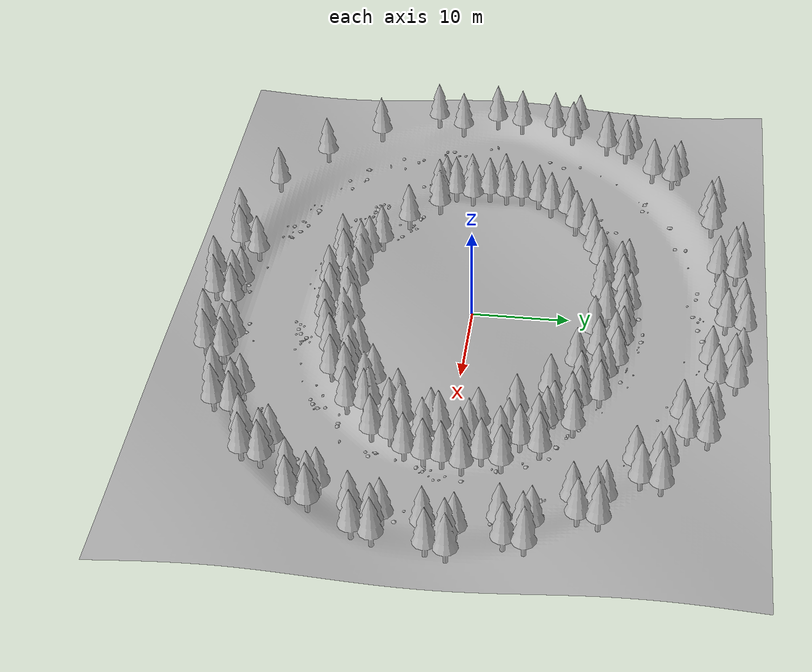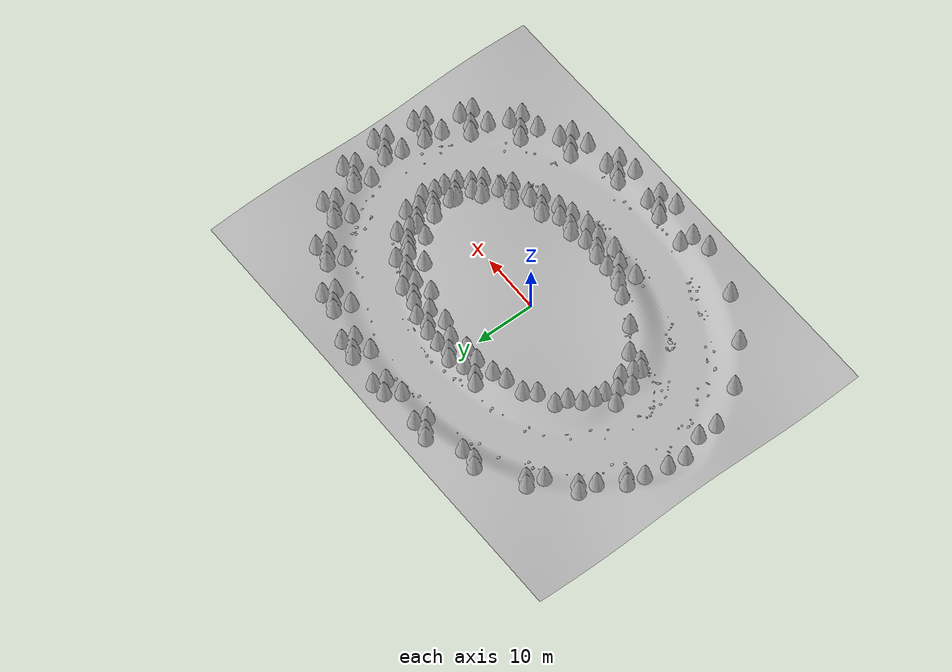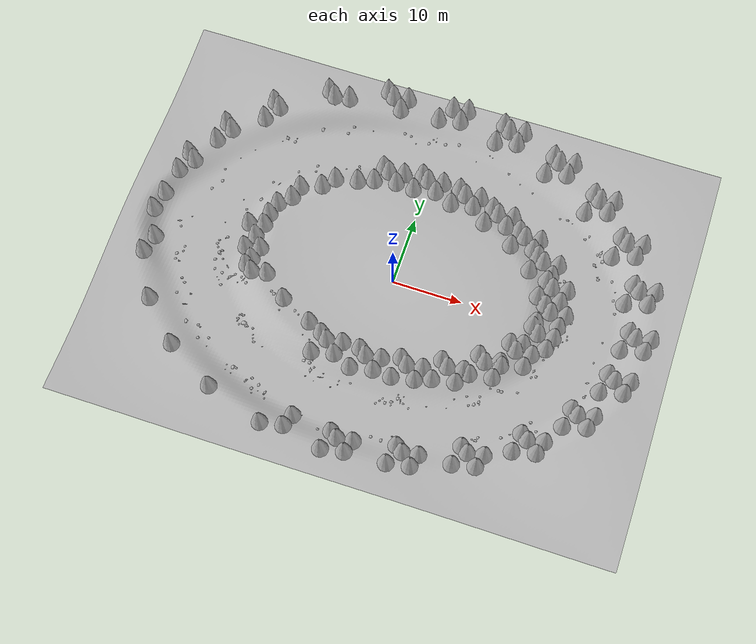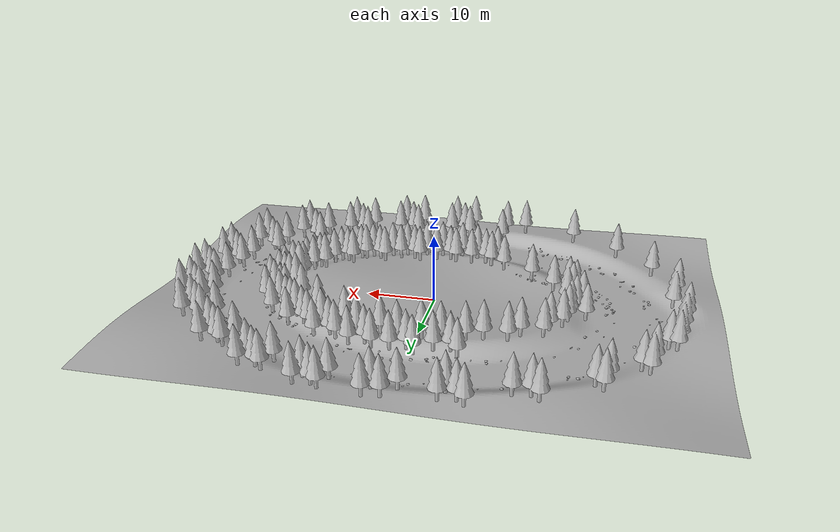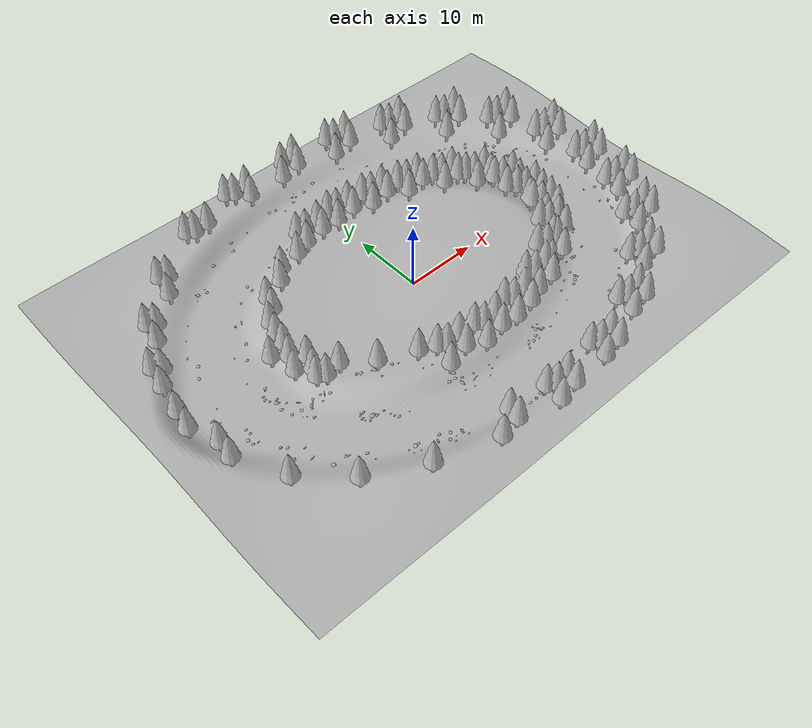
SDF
<sdf version="1.9">
 <world name="nomad_forest">
  <model name="terrain">
   <static>true</static>
   <link name="link">
    <visual name="visual">
     <geometry><mesh><uri>../assets/geometry/terrain.obj</uri><scale>1 1 1</scale></mesh></geometry>
    </visual>
    <collision name="rock">
     <geometry><mesh><uri>../assets/geometry/terrain.obj</uri><scale>1 1 1</scale></mesh></geometry>
    </collision>
   </link>
  </model>
  <model name="tree_001">
   <static>true</static>
   <pose>22.2 1.4 0.48610971503627975 0 0 0.0</pose>
   <link name="link">
    <visual name="visual">
     <geometry><mesh><uri>../assets/models/pine_tree.obj</uri><scale>1.3 1.3 1.3</scale></mesh></geometry>
    </visual>
    <collision name="trunk">
     <pose>0 0 2.08 0 0 0</pose>
     <geometry><cylinder><radius>0.26</radius><length>4.16</length></cylinder></geometry>
    </collision>
   </link>
  </model>
  <model name="tree_002">
   <static>true</static>
   <pose>23.8 -0.2 0.07159315940858453 0 0 0.0</pose>
   <link name="link">
    <visual name="visual">
     <geometry><mesh><uri>../assets/models/pine_tree.obj</uri><scale>1.3 1.3 1.3</scale></mesh></geometry>
    </visual>
    <collision name="trunk">
     <pose>0 0 2.08 0 0 0</pose>
     <geometry><cylinder><radius>0.26</radius><length>4.16</length></cylinder></geometry>
    </collision>
   </link>
  </model>
  <model name="tree_004">
   <static>true</static>
   <pose>24.4 1.7 0.0016630969536097122 0 0 0.0</pose>
   <link name="link">
    <visual name="visual">
     <geometry><mesh><uri>../assets/models/pine_tree.obj</uri><scale>1.3 1.3 1.3</scale></mesh></geometry>
    </visual>
    <collision name="trunk">
     <pose>0 0 2.08 0 0 0</pose>
     <geometry><cylinder><radius>0.26</radius><length>4.16</length></cylinder></geometry>
    </collision>
   </link>
  </model>
  <model name="tree_005">
   <static>true</static>
   <pose>32.7 -0.8 0.10340666617253662 0 0 0.0</pose>
   <link name="link">
    <visual name="visual">
     <geometry><mesh><uri>../assets/models/pine_tree.obj</uri><scale>1.3 1.3 1.3</scale></mesh></geometry>
    </visual>
    <collision name="trunk">
     <pose>0 0 2.08 0 0 0</pose>
     <geometry><cylinder><radius>0.26</radius><length>4.16</length></cylinder></geometry>
    </collision>
   </link>
  </model>
  <model name="tree_008">
   <static>true</static>
   <pose>33.2 2.1 0.1996735581411467 0 0 0.0</pose>
   <link name="link">
    <visual name="visual">
     <geometry><mesh><uri>../assets/models/pine_tree.obj</uri><scale>1.3 1.3 1.3</scale></mesh></geometry>
    </visual>
    <collision name="trunk">
     <pose>0 0 2.08 0 0 0</pose>
     <geometry><cylinder><radius>0.26</radius><length>4.16</length></cylinder></geometry>
    </collision>
   </link>
  </model>
  <model name="tree_011">
   <static>true</static>
   <pose>21.4503681783595 5.023466631435291 0.38451372104287335 0 0 0.2617993877991494</pose>
   <link name="link">
    <visual name="visual">
     <geometry><mesh><uri>../assets/models/pine_tree.obj</uri><scale>1.3 1.3 1.3</scale></mesh></geometry>
    </visual>
    <collision name="trunk">
     <pose>0 0 2.08 0 0 0</pose>
     <geometry><cylinder><radius>0.26</radius><length>4.16</length></cylinder></geometry>
    </collision>
   </link>
  </model>
  <model name="tree_012">
   <static>true</static>
   <pose>23.050368178359502 3.42346663143529 0.12085753786965957 0 0 0.2617993877991494</pose>
   <link name="link">
    <visual name="visual">
     <geometry><mesh><uri>../assets/models/pine_tree.obj</uri><scale>1.3 1.3 1.3</scale></mesh></geometry>
    </visual>
    <collision name="trunk">
     <pose>0 0 2.08 0 0 0</pose>
     <geometry><cylinder><radius>0.26</radius><length>4.16</length></cylinder></geometry>
    </collision>
   </link>
  </model>
  <model name="tree_013">
   <static>true</static>
   <pose>20.4503681783595 5.72346663143529 0.5880347906159413 0 0 0.2617993877991494</pose>
   <link name="link">
    <visual name="visual">
     <geometry><mesh><uri>../assets/models/pine_tree.obj</uri><scale>1.3 1.3 1.3</scale></mesh></geometry>
    </visual>
    <collision name="trunk">
     <pose>0 0 2.08 0 0 0</pose>
     <geometry><cylinder><radius>0.26</radius><length>4.16</length></cylinder></geometry>
    </collision>
   </link>
  </model>
  <model name="tree_014">
   <static>true</static>
   <pose>23.6503681783595 5.3234666314352905 0.0 0 0 0.2617993877991494</pose>
   <link name="link">
    <visual name="visual">
     <geometry><mesh><uri>../assets/models/pine_tree.obj</uri><scale>1.3 1.3 1.3</scale></mesh></geometry>
    </visual>
    <collision name="trunk">
     <pose>0 0 2.08 0 0 0</pose>
     <geometry><cylinder><radius>0.26</radius><length>4.16</length></cylinder></geometry>
    </collision>
   </link>
  </model>
  <model name="tree_015">
   <static>true</static>
   <pose>31.54147809382832 5.929295172665539 0.11574541042770978 0 0 0.2617993877991494</pose>
   <link name="link">
    <visual name="visual">
     <geometry><mesh><uri>../assets/models/pine_tree.obj</uri><scale>1.3 1.3 1.3</scale></mesh></geometry>
    </visual>
    <collision name="trunk">
     <pose>0 0 2.08 0 0 0</pose>
     <geometry><cylinder><radius>0.26</radius><length>4.16</length></cylinder></geometry>
    </collision>
   </link>
  </model>
  <model name="tree_021">
   <static>true</static>
   <pose>19.252558883257652 8.399999999999999 0.3602471448523519 0 0 0.5235987755982988</pose>
   <link name="link">
    <visual name="visual">
     <geometry><mesh><uri>../assets/models/pine_tree.obj</uri><scale>1.3 1.3 1.3</scale></mesh></geometry>
    </visual>
    <collision name="trunk">
     <pose>0 0 2.08 0 0 0</pose>
     <geometry><cylinder><radius>0.26</radius><length>4.16</length></cylinder></geometry>
    </collision>
   </link>
  </model>
  <model name="tree_022">
   <static>true</static>
   <pose>20.852558883257654 6.799999999999999 0.2710729561804973 0 0 0.5235987755982988</pose>
   <link name="link">
    <visual name="visual">
     <geometry><mesh><uri>../assets/models/pine_tree.obj</uri><scale>1.3 1.3 1.3</scale></mesh></geometry>
    </visual>
    <collision name="trunk">
     <pose>0 0 2.08 0 0 0</pose>
     <geometry><cylinder><radius>0.26</radius><length>4.16</length></cylinder></geometry>
    </collision>
   </link>
  </model>
  <model name="tree_023">
   <static>true</static>
   <pose>18.252558883257652 9.1 0.4354302617749764 0 0 0.5235987755982988</pose>
   <link name="link">
    <visual name="visual">
     <geometry><mesh><uri>../assets/models/pine_tree.obj</uri><scale>1.3 1.3 1.3</scale></mesh></geometry>
    </visual>
    <collision name="trunk">
     <pose>0 0 2.08 0 0 0</pose>
     <geometry><cylinder><radius>0.26</radius><length>4.16</length></cylinder></geometry>
    </collision>
   </link>
  </model>
  <model name="tree_024">
   <static>true</static>
   <pose>21.45255888325765 8.7 0.0 0 0 0.5235987755982988</pose>
   <link name="link">
    <visual name="visual">
     <geometry><mesh><uri>../assets/models/pine_tree.obj</uri><scale>1.3 1.3 1.3</scale></mesh></geometry>
    </visual>
    <collision name="trunk">
     <pose>0 0 2.08 0 0 0</pose>
     <geometry><cylinder><radius>0.26</radius><length>4.16</length></cylinder></geometry>
    </collision>
   </link>
  </model>
  <model name="tree_025">
   <static>true</static>
   <pose>28.144863728670916 12.199999999999998 0.22459463047103365 0 0 0.5235987755982988</pose>
   <link name="link">
    <visual name="visual">
     <geometry><mesh><uri>../assets/models/pine_tree.obj</uri><scale>1.3 1.3 1.3</scale></mesh></geometry>
    </visual>
    <collision name="trunk">
     <pose>0 0 2.08 0 0 0</pose>
     <geometry><cylinder><radius>0.26</radius><length>4.16</length></cylinder></geometry>
    </collision>
   </link>
  </model>
  <model name="tree_031">
   <static>true</static>
   <pose>15.756349186104046 11.299494936611664 0.35532801148949694 0 0 0.7853981633974483</pose>
   <link name="link">
    <visual name="visual">
     <geometry><mesh><uri>../assets/models/pine_tree.obj</uri><scale>1.3 1.3 1.3</scale></mesh></geometry>
    </visual>
    <collision name="trunk">
     <pose>0 0 2.08 0 0 0</pose>
     <geometry><cylinder><radius>0.26</radius><length>4.16</length></cylinder></geometry>
    </collision>
   </link>
  </model>
  <model name="tree_032">
   <static>true</static>
   <pose>17.356349186104048 9.699494936611664 0.48352514104800615 0 0 0.7853981633974483</pose>
   <link name="link">
    <visual name="visual">
     <geometry><mesh><uri>../assets/models/pine_tree.obj</uri><scale>1.3 1.3 1.3</scale></mesh></geometry>
    </visual>
    <collision name="trunk">
     <pose>0 0 2.08 0 0 0</pose>
     <geometry><cylinder><radius>0.26</radius><length>4.16</length></cylinder></geometry>
    </collision>
   </link>
  </model>
  <model name="tree_033">
   <static>true</static>
   <pose>14.756349186104046 11.999494936611663 0.32599767005080293 0 0 0.7853981633974483</pose>
   <link name="link">
    <visual name="visual">
     <geometry><mesh><uri>../assets/models/pine_tree.obj</uri><scale>1.3 1.3 1.3</scale></mesh></geometry>
    </visual>
    <collision name="trunk">
     <pose>0 0 2.08 0 0 0</pose>
     <geometry><cylinder><radius>0.26</radius><length>4.16</length></cylinder></geometry>
    </collision>
   </link>
  </model>
  <model name="tree_034">
   <static>true</static>
   <pose>17.956349186104045 11.599494936611663 0.01610409944721286 0 0 0.7853981633974483</pose>
   <link name="link">
    <visual name="visual">
     <geometry><mesh><uri>../assets/models/pine_tree.obj</uri><scale>1.3 1.3 1.3</scale></mesh></geometry>
    </visual>
    <collision name="trunk">
     <pose>0 0 2.08 0 0 0</pose>
     <geometry><cylinder><radius>0.26</radius><length>4.16</length></cylinder></geometry>
    </collision>
   </link>
  </model>
  <model name="tree_035">
   <static>true</static>
   <pose>22.741630560342617 17.584776310850234 0.31578794078068306 0 0 0.7853981633974483</pose>
   <link name="link">
    <visual name="visual">
     <geometry><mesh><uri>../assets/models/pine_tree.obj</uri><scale>1.3 1.3 1.3</scale></mesh></geometry>
    </visual>
    <collision name="trunk">
     <pose>0 0 2.08 0 0 0</pose>
     <geometry><cylinder><radius>0.26</radius><length>4.16</length></cylinder></geometry>
    </collision>
   </link>
  </model>
  <model name="tree_041">
   <static>true</static>
   <pose>11.200000000000001 13.524355652982141 0.3609772500529969 0 0 1.0471975511965976</pose>
   <link name="link">
    <visual name="visual">
     <geometry><mesh><uri>../assets/models/pine_tree.obj</uri><scale>1.3 1.3 1.3</scale></mesh></geometry>
    </visual>
    <collision name="trunk">
     <pose>0 0 2.08 0 0 0</pose>
     <geometry><cylinder><radius>0.26</radius><length>4.16</length></cylinder></geometry>
    </collision>
   </link>
  </model>
  <model name="tree_042">
   <static>true</static>
   <pose>12.800000000000002 11.924355652982142 0.6368033489550051 0 0 1.0471975511965976</pose>
   <link name="link">
    <visual name="visual">
     <geometry><mesh><uri>../assets/models/pine_tree.obj</uri><scale>1.3 1.3 1.3</scale></mesh></geometry>
    </visual>
    <collision name="trunk">
     <pose>0 0 2.08 0 0 0</pose>
     <geometry><cylinder><radius>0.26</radius><length>4.16</length></cylinder></geometry>
    </collision>
   </link>
  </model>
  <model name="tree_043">
   <static>true</static>
   <pose>10.200000000000001 14.22435565298214 0.271439670314414 0 0 1.0471975511965976</pose>
   <link name="link">
    <visual name="visual">
     <geometry><mesh><uri>../assets/models/pine_tree.obj</uri><scale>1.3 1.3 1.3</scale></mesh></geometry>
    </visual>
    <collision name="trunk">
     <pose>0 0 2.08 0 0 0</pose>
     <geometry><cylinder><radius>0.26</radius><length>4.16</length></cylinder></geometry>
    </collision>
   </link>
  </model>
  <model name="tree_044">
   <static>true</static>
   <pose>13.400000000000002 13.82435565298214 0.07714651540756952 0 0 1.0471975511965976</pose>
   <link name="link">
    <visual name="visual">
     <geometry><mesh><uri>../assets/models/pine_tree.obj</uri><scale>1.3 1.3 1.3</scale></mesh></geometry>
    </visual>
    <collision name="trunk">
     <pose>0 0 2.08 0 0 0</pose>
     <geometry><cylinder><radius>0.26</radius><length>4.16</length></cylinder></geometry>
    </collision>
   </link>
  </model>
  <model name="tree_045">
   <static>true</static>
   <pose>15.700000000000003 21.716660498395402 0.3554778454459296 0 0 1.0471975511965976</pose>
   <link name="link">
    <visual name="visual">
     <geometry><mesh><uri>../assets/models/pine_tree.obj</uri><scale>1.3 1.3 1.3</scale></mesh></geometry>
    </visual>
    <collision name="trunk">
     <pose>0 0 2.08 0 0 0</pose>
     <geometry><cylinder><radius>0.26</radius><length>4.16</length></cylinder></geometry>
    </collision>
   </link>
  </model>
  <model name="tree_051">
   <static>true</static>
   <pose>5.894018992255462 14.922961568046956 0.446261835789277 0 0 1.308996938995747</pose>
   <link name="link">
    <visual name="visual">
     <geometry><mesh><uri>../assets/models/pine_tree.obj</uri><scale>1.3 1.3 1.3</scale></mesh></geometry>
    </visual>
    <collision name="trunk">
     <pose>0 0 2.08 0 0 0</pose>
     <geometry><cylinder><radius>0.26</radius><length>4.16</length></cylinder></geometry>
    </collision>
   </link>
  </model>
  <model name="tree_052">
   <static>true</static>
   <pose>7.494018992255461 13.322961568046956 0.7757029701277439 0 0 1.308996938995747</pose>
   <link name="link">
    <visual name="visual">
     <geometry><mesh><uri>../assets/models/pine_tree.obj</uri><scale>1.3 1.3 1.3</scale></mesh></geometry>
    </visual>
    <collision name="trunk">
     <pose>0 0 2.08 0 0 0</pose>
     <geometry><cylinder><radius>0.26</radius><length>4.16</length></cylinder></geometry>
    </collision>
   </link>
  </model>
  <model name="tree_053">
   <static>true</static>
   <pose>4.894018992255462 15.622961568046955 0.2975410747441759 0 0 1.308996938995747</pose>
   <link name="link">
    <visual name="visual">
     <geometry><mesh><uri>../assets/models/pine_tree.obj</uri><scale>1.3 1.3 1.3</scale></mesh></geometry>
    </visual>
    <collision name="trunk">
     <pose>0 0 2.08 0 0 0</pose>
     <geometry><cylinder><radius>0.26</radius><length>4.16</length></cylinder></geometry>
    </collision>
   </link>
  </model>
  <model name="tree_054">
   <static>true</static>
   <pose>8.094018992255462 15.222961568046955 0.19047295386907673 0 0 1.308996938995747</pose>
   <link name="link">
    <visual name="visual">
     <geometry><mesh><uri>../assets/models/pine_tree.obj</uri><scale>1.3 1.3 1.3</scale></mesh></geometry>
    </visual>
    <collision name="trunk">
     <pose>0 0 2.08 0 0 0</pose>
     <geometry><cylinder><radius>0.26</radius><length>4.16</length></cylinder></geometry>
    </collision>
   </link>
  </model>
  <model name="tree_055">
   <static>true</static>
   <pose>7.499847533485712 24.31407148351577 0.5821905365296843 0 0 1.308996938995747</pose>
   <link name="link">
    <visual name="visual">
     <geometry><mesh><uri>../assets/models/pine_tree.obj</uri><scale>1.3 1.3 1.3</scale></mesh></geometry>
    </visual>
    <collision name="trunk">
     <pose>0 0 2.08 0 0 0</pose>
     <geometry><cylinder><radius>0.26</radius><length>4.16</length></cylinder></geometry>
    </collision>
   </link>
  </model>
  <model name="tree_061">
   <static>true</static>
   <pose>0.20000000000000137 15.4 0.6259282533875952 0 0 1.5707963267948966</pose>
   <link name="link">
    <visual name="visual">
     <geometry><mesh><uri>../assets/models/pine_tree.obj</uri><scale>1.3 1.3 1.3</scale></mesh></geometry>
    </visual>
    <collision name="trunk">
     <pose>0 0 2.08 0 0 0</pose>
     <geometry><cylinder><radius>0.26</radius><length>4.16</length></cylinder></geometry>
    </collision>
   </link>
  </model>
  <model name="tree_063">
   <static>true</static>
   <pose>-0.7999999999999987 16.1 0.3581369147440168 0 0 1.5707963267948966</pose>
   <link name="link">
    <visual name="visual">
     <geometry><mesh><uri>../assets/models/pine_tree.obj</uri><scale>1.3 1.3 1.3</scale></mesh></geometry>
    </visual>
    <collision name="trunk">
     <pose>0 0 2.08 0 0 0</pose>
     <geometry><cylinder><radius>0.26</radius><length>4.16</length></cylinder></geometry>
    </collision>
   </link>
  </model>
  <model name="tree_064">
   <static>true</static>
   <pose>2.4000000000000012 15.7 0.4158137723847154 0 0 1.5707963267948966</pose>
   <link name="link">
    <visual name="visual">
     <geometry><mesh><uri>../assets/models/pine_tree.obj</uri><scale>1.3 1.3 1.3</scale></mesh></geometry>
    </visual>
    <collision name="trunk">
     <pose>0 0 2.08 0 0 0</pose>
     <geometry><cylinder><radius>0.26</radius><length>4.16</length></cylinder></geometry>
    </collision>
   </link>
  </model>
  <model name="tree_065">
   <static>true</static>
   <pose>-1.299999999999998 25.2 0.899606746415592 0 0 1.5707963267948966</pose>
   <link name="link">
    <visual name="visual">
     <geometry><mesh><uri>../assets/models/pine_tree.obj</uri><scale>1.3 1.3 1.3</scale></mesh></geometry>
    </visual>
    <collision name="trunk">
     <pose>0 0 2.08 0 0 0</pose>
     <geometry><cylinder><radius>0.26</radius><length>4.16</length></cylinder></geometry>
    </collision>
   </link>
  </model>
  <model name="tree_067">
   <static>true</static>
   <pose>1.800000000000002 25.8 0.9974993215046156 0 0 1.5707963267948966</pose>
   <link name="link">
    <visual name="visual">
     <geometry><mesh><uri>../assets/models/pine_tree.obj</uri><scale>1.3 1.3 1.3</scale></mesh></geometry>
    </visual>
    <collision name="trunk">
     <pose>0 0 2.08 0 0 0</pose>
     <geometry><cylinder><radius>0.26</radius><length>4.16</length></cylinder></geometry>
    </collision>
   </link>
  </model>
  <model name="tree_070">
   <static>true</static>
   <pose>-5.494018992255453 14.922961568046956 0.7615472257196707 0 0 1.832595714594046</pose>
   <link name="link">
    <visual name="visual">
     <geometry><mesh><uri>../assets/models/pine_tree.obj</uri><scale>1.3 1.3 1.3</scale></mesh></geometry>
    </visual>
    <collision name="trunk">
     <pose>0 0 2.08 0 0 0</pose>
     <geometry><cylinder><radius>0.26</radius><length>4.16</length></cylinder></geometry>
    </collision>
   </link>
  </model>
  <model name="tree_072">
   <static>true</static>
   <pose>-6.494018992255453 15.622961568046955 0.35174982533603866 0 0 1.832595714594046</pose>
   <link name="link">
    <visual name="visual">
     <geometry><mesh><uri>../assets/models/pine_tree.obj</uri><scale>1.3 1.3 1.3</scale></mesh></geometry>
    </visual>
    <collision name="trunk">
     <pose>0 0 2.08 0 0 0</pose>
     <geometry><cylinder><radius>0.26</radius><length>4.16</length></cylinder></geometry>
    </collision>
   </link>
  </model>
  <model name="tree_073">
   <static>true</static>
   <pose>-3.2940189922554537 15.222961568046955 0.7251133380070864 0 0 1.832595714594046</pose>
   <link name="link">
    <visual name="visual">
     <geometry><mesh><uri>../assets/models/pine_tree.obj</uri><scale>1.3 1.3 1.3</scale></mesh></geometry>
    </visual>
    <collision name="trunk">
     <pose>0 0 2.08 0 0 0</pose>
     <geometry><cylinder><radius>0.26</radius><length>4.16</length></cylinder></geometry>
    </collision>
   </link>
  </model>
  <model name="tree_076">
   <static>true</static>
   <pose>-6.999847533485702 24.914071483515777 1.1040904384616235 0 0 1.832595714594046</pose>
   <link name="link">
    <visual name="visual">
     <geometry><mesh><uri>../assets/models/pine_tree.obj</uri><scale>1.3 1.3 1.3</scale></mesh></geometry>
    </visual>
    <collision name="trunk">
     <pose>0 0 2.08 0 0 0</pose>
     <geometry><cylinder><radius>0.26</radius><length>4.16</length></cylinder></geometry>
    </collision>
   </link>
  </model>
  <model name="tree_159">
   <static>true</static>
   <pose>-6.994018992255473 -14.322961568046955 0.9091399216074649 0 0 4.45058959258554</pose>
   <link name="link">
    <visual name="visual">
     <geometry><mesh><uri>../assets/models/pine_tree.obj</uri><scale>1.3 1.3 1.3</scale></mesh></geometry>
    </visual>
    <collision name="trunk">
     <pose>0 0 2.08 0 0 0</pose>
     <geometry><cylinder><radius>0.26</radius><length>4.16</length></cylinder></geometry>
    </collision>
   </link>
  </model>
  <model name="tree_166">
   <static>true</static>
   <pose>-6.999847533485732 -25.314071483515768 1.2046498249383524 0 0 4.45058959258554</pose>
   <link name="link">
    <visual name="visual">
     <geometry><mesh><uri>../assets/models/pine_tree.obj</uri><scale>1.3 1.3 1.3</scale></mesh></geometry>
    </visual>
    <collision name="trunk">
     <pose>0 0 2.08 0 0 0</pose>
     <geometry><cylinder><radius>0.26</radius><length>4.16</length></cylinder></geometry>
    </collision>
   </link>
  </model>
  <model name="tree_168">
   <static>true</static>
   <pose>-6.399847533485731 -23.41407148351577 0.4094083913112832 0 0 4.45058959258554</pose>
   <link name="link">
    <visual name="visual">
     <geometry><mesh><uri>../assets/models/pine_tree.obj</uri><scale>1.3 1.3 1.3</scale></mesh></geometry>
    </visual>
    <collision name="trunk">
     <pose>0 0 2.08 0 0 0</pose>
     <geometry><cylinder><radius>0.26</radius><length>4.16</length></cylinder></geometry>
    </collision>
   </link>
  </model>
  <model name="tree_169">
   <static>true</static>
   <pose>-1.300000000000004 -14.8 0.9011798499568849 0 0 4.71238898038469</pose>
   <link name="link">
    <visual name="visual">
     <geometry><mesh><uri>../assets/models/pine_tree.obj</uri><scale>1.3 1.3 1.3</scale></mesh></geometry>
    </visual>
    <collision name="trunk">
     <pose>0 0 2.08 0 0 0</pose>
     <geometry><cylinder><radius>0.26</radius><length>4.16</length></cylinder></geometry>
    </collision>
   </link>
  </model>
  <model name="tree_171">
   <static>true</static>
   <pose>1.799999999999996 -14.2 0.9465348170970856 0 0 4.71238898038469</pose>
   <link name="link">
    <visual name="visual">
     <geometry><mesh><uri>../assets/models/pine_tree.obj</uri><scale>1.3 1.3 1.3</scale></mesh></geometry>
    </visual>
    <collision name="trunk">
     <pose>0 0 2.08 0 0 0</pose>
     <geometry><cylinder><radius>0.26</radius><length>4.16</length></cylinder></geometry>
    </collision>
   </link>
  </model>
  <model name="tree_175">
   <static>true</static>
   <pose>0.19999999999999377 -24.6 0.6282639620269498 0 0 4.71238898038469</pose>
   <link name="link">
    <visual name="visual">
     <geometry><mesh><uri>../assets/models/pine_tree.obj</uri><scale>1.3 1.3 1.3</scale></mesh></geometry>
    </visual>
    <collision name="trunk">
     <pose>0 0 2.08 0 0 0</pose>
     <geometry><cylinder><radius>0.26</radius><length>4.16</length></cylinder></geometry>
    </collision>
   </link>
  </model>
  <model name="tree_177">
   <static>true</static>
   <pose>-0.8000000000000063 -23.9 0.3612919519845038 0 0 4.71238898038469</pose>
   <link name="link">
    <visual name="visual">
     <geometry><mesh><uri>../assets/models/pine_tree.obj</uri><scale>1.3 1.3 1.3</scale></mesh></geometry>
    </visual>
    <collision name="trunk">
     <pose>0 0 2.08 0 0 0</pose>
     <geometry><cylinder><radius>0.26</radius><length>4.16</length></cylinder></geometry>
    </collision>
   </link>
  </model>
  <model name="tree_178">
   <static>true</static>
   <pose>2.3999999999999937 -24.3 0.4895775848045571 0 0 4.71238898038469</pose>
   <link name="link">
    <visual name="visual">
     <geometry><mesh><uri>../assets/models/pine_tree.obj</uri><scale>1.3 1.3 1.3</scale></mesh></geometry>
    </visual>
    <collision name="trunk">
     <pose>0 0 2.08 0 0 0</pose>
     <geometry><cylinder><radius>0.26</radius><length>4.16</length></cylinder></geometry>
    </collision>
   </link>
  </model>
  <model name="tree_179">
   <static>true</static>
   <pose>4.394018992255447 -14.322961568046958 0.7512441429022133 0 0 4.974188368183839</pose>
   <link name="link">
    <visual name="visual">
     <geometry><mesh><uri>../assets/models/pine_tree.obj</uri><scale>1.3 1.3 1.3</scale></mesh></geometry>
    </visual>
    <collision name="trunk">
     <pose>0 0 2.08 0 0 0</pose>
     <geometry><cylinder><radius>0.26</radius><length>4.16</length></cylinder></geometry>
    </collision>
   </link>
  </model>
  <model name="tree_181">
   <static>true</static>
   <pose>7.494018992255446 -13.722961568046957 0.6731307963785371 0 0 4.974188368183839</pose>
   <link name="link">
    <visual name="visual">
     <geometry><mesh><uri>../assets/models/pine_tree.obj</uri><scale>1.3 1.3 1.3</scale></mesh></geometry>
    </visual>
    <collision name="trunk">
     <pose>0 0 2.08 0 0 0</pose>
     <geometry><cylinder><radius>0.26</radius><length>4.16</length></cylinder></geometry>
    </collision>
   </link>
  </model>
  <model name="tree_185">
   <static>true</static>
   <pose>8.999847533485688 -23.71407148351578 0.44477082030824366 0 0 4.974188368183839</pose>
   <link name="link">
    <visual name="visual">
     <geometry><mesh><uri>../assets/models/pine_tree.obj</uri><scale>1.3 1.3 1.3</scale></mesh></geometry>
    </visual>
    <collision name="trunk">
     <pose>0 0 2.08 0 0 0</pose>
     <geometry><cylinder><radius>0.26</radius><length>4.16</length></cylinder></geometry>
    </collision>
   </link>
  </model>
  <model name="tree_187">
   <static>true</static>
   <pose>7.999847533485689 -23.014071483515778 0.1960617355161121 0 0 4.974188368183839</pose>
   <link name="link">
    <visual name="visual">
     <geometry><mesh><uri>../assets/models/pine_tree.obj</uri><scale>1.3 1.3 1.3</scale></mesh></geometry>
    </visual>
    <collision name="trunk">
     <pose>0 0 2.08 0 0 0</pose>
     <geometry><cylinder><radius>0.26</radius><length>4.16</length></cylinder></geometry>
    </collision>
   </link>
  </model>
  <model name="tree_188">
   <static>true</static>
   <pose>11.19984753348569 -23.41407148351578 0.4662068924197648 0 0 4.974188368183839</pose>
   <link name="link">
    <visual name="visual">
     <geometry><mesh><uri>../assets/models/pine_tree.obj</uri><scale>1.3 1.3 1.3</scale></mesh></geometry>
    </visual>
    <collision name="trunk">
     <pose>0 0 2.08 0 0 0</pose>
     <geometry><cylinder><radius>0.26</radius><length>4.16</length></cylinder></geometry>
    </collision>
   </link>
  </model>
  <model name="tree_189">
   <static>true</static>
   <pose>9.699999999999985 -12.924355652982147 0.6949638199938595 0 0 5.235987755982988</pose>
   <link name="link">
    <visual name="visual">
     <geometry><mesh><uri>../assets/models/pine_tree.obj</uri><scale>1.3 1.3 1.3</scale></mesh></geometry>
    </visual>
    <collision name="trunk">
     <pose>0 0 2.08 0 0 0</pose>
     <geometry><cylinder><radius>0.26</radius><length>4.16</length></cylinder></geometry>
    </collision>
   </link>
  </model>
  <model name="tree_191">
   <static>true</static>
   <pose>12.799999999999986 -12.324355652982145 0.5162810978951617 0 0 5.235987755982988</pose>
   <link name="link">
    <visual name="visual">
     <geometry><mesh><uri>../assets/models/pine_tree.obj</uri><scale>1.3 1.3 1.3</scale></mesh></geometry>
    </visual>
    <collision name="trunk">
     <pose>0 0 2.08 0 0 0</pose>
     <geometry><cylinder><radius>0.26</radius><length>4.16</length></cylinder></geometry>
    </collision>
   </link>
  </model>
  <model name="tree_195">
   <static>true</static>
   <pose>17.199999999999978 -21.116660498395415 0.36368154408900966 0 0 5.235987755982988</pose>
   <link name="link">
    <visual name="visual">
     <geometry><mesh><uri>../assets/models/pine_tree.obj</uri><scale>1.3 1.3 1.3</scale></mesh></geometry>
    </visual>
    <collision name="trunk">
     <pose>0 0 2.08 0 0 0</pose>
     <geometry><cylinder><radius>0.26</radius><length>4.16</length></cylinder></geometry>
    </collision>
   </link>
  </model>
  <model name="tree_197">
   <static>true</static>
   <pose>16.199999999999978 -20.416660498395412 0.11703247254969755 0 0 5.235987755982988</pose>
   <link name="link">
    <visual name="visual">
     <geometry><mesh><uri>../assets/models/pine_tree.obj</uri><scale>1.3 1.3 1.3</scale></mesh></geometry>
    </visual>
    <collision name="trunk">
     <pose>0 0 2.08 0 0 0</pose>
     <geometry><cylinder><radius>0.26</radius><length>4.16</length></cylinder></geometry>
    </collision>
   </link>
  </model>
  <model name="tree_198">
   <static>true</static>
   <pose>19.399999999999977 -20.816660498395414 0.5686612740390065 0 0 5.235987755982988</pose>
   <link name="link">
    <visual name="visual">
     <geometry><mesh><uri>../assets/models/pine_tree.obj</uri><scale>1.3 1.3 1.3</scale></mesh></geometry>
    </visual>
    <collision name="trunk">
     <pose>0 0 2.08 0 0 0</pose>
     <geometry><cylinder><radius>0.26</radius><length>4.16</length></cylinder></geometry>
    </collision>
   </link>
  </model>
  <model name="tree_199">
   <static>true</static>
   <pose>14.25634918610404 -10.699494936611668 0.7907037362094124 0 0 5.497787143782138</pose>
   <link name="link">
    <visual name="visual">
     <geometry><mesh><uri>../assets/models/pine_tree.obj</uri><scale>1.3 1.3 1.3</scale></mesh></geometry>
    </visual>
    <collision name="trunk">
     <pose>0 0 2.08 0 0 0</pose>
     <geometry><cylinder><radius>0.26</radius><length>4.16</length></cylinder></geometry>
    </collision>
   </link>
  </model>
  <model name="tree_201">
   <static>true</static>
   <pose>17.35634918610404 -10.099494936611666 0.37450405798290903 0 0 5.497787143782138</pose>
   <link name="link">
    <visual name="visual">
     <geometry><mesh><uri>../assets/models/pine_tree.obj</uri><scale>1.3 1.3 1.3</scale></mesh></geometry>
    </visual>
    <collision name="trunk">
     <pose>0 0 2.08 0 0 0</pose>
     <geometry><cylinder><radius>0.26</radius><length>4.16</length></cylinder></geometry>
    </collision>
   </link>
  </model>
  <model name="tree_203">
   <static>true</static>
   <pose>17.956349186104042 -8.199494936611668 0.7543990932131477 0 0 5.497787143782138</pose>
   <link name="link">
    <visual name="visual">
     <geometry><mesh><uri>../assets/models/pine_tree.obj</uri><scale>1.3 1.3 1.3</scale></mesh></geometry>
    </visual>
    <collision name="trunk">
     <pose>0 0 2.08 0 0 0</pose>
     <geometry><cylinder><radius>0.26</radius><length>4.16</length></cylinder></geometry>
    </collision>
   </link>
  </model>
  <model name="tree_204">
   <static>true</static>
   <pose>22.74163056034261 -19.18477631085024 0.728302365356587 0 0 5.497787143782138</pose>
   <link name="link">
    <visual name="visual">
     <geometry><mesh><uri>../assets/models/pine_tree.obj</uri><scale>1.3 1.3 1.3</scale></mesh></geometry>
    </visual>
    <collision name="trunk">
     <pose>0 0 2.08 0 0 0</pose>
     <geometry><cylinder><radius>0.26</radius><length>4.16</length></cylinder></geometry>
    </collision>
   </link>
  </model>
  <model name="tree_205">
   <static>true</static>
   <pose>24.24163056034261 -16.98477631085024 0.46672584482497154 0 0 5.497787143782138</pose>
   <link name="link">
    <visual name="visual">
     <geometry><mesh><uri>../assets/models/pine_tree.obj</uri><scale>1.3 1.3 1.3</scale></mesh></geometry>
    </visual>
    <collision name="trunk">
     <pose>0 0 2.08 0 0 0</pose>
     <geometry><cylinder><radius>0.26</radius><length>4.16</length></cylinder></geometry>
    </collision>
   </link>
  </model>
  <model name="tree_207">
   <static>true</static>
   <pose>23.24163056034261 -16.284776310850237 0.11675102565428572 0 0 5.497787143782138</pose>
   <link name="link">
    <visual name="visual">
     <geometry><mesh><uri>../assets/models/pine_tree.obj</uri><scale>1.3 1.3 1.3</scale></mesh></geometry>
    </visual>
    <collision name="trunk">
     <pose>0 0 2.08 0 0 0</pose>
     <geometry><cylinder><radius>0.26</radius><length>4.16</length></cylinder></geometry>
    </collision>
   </link>
  </model>
  <model name="tree_211">
   <static>true</static>
   <pose>20.852558883257647 -7.200000000000006 0.2055618578594582 0 0 5.759586531581287</pose>
   <link name="link">
    <visual name="visual">
     <geometry><mesh><uri>../assets/models/pine_tree.obj</uri><scale>1.3 1.3 1.3</scale></mesh></geometry>
    </visual>
    <collision name="trunk">
     <pose>0 0 2.08 0 0 0</pose>
     <geometry><cylinder><radius>0.26</radius><length>4.16</length></cylinder></geometry>
    </collision>
   </link>
  </model>
  <model name="tree_213">
   <static>true</static>
   <pose>21.452558883257645 -5.300000000000006 0.3437206045521515 0 0 5.759586531581287</pose>
   <link name="link">
    <visual name="visual">
     <geometry><mesh><uri>../assets/models/pine_tree.obj</uri><scale>1.3 1.3 1.3</scale></mesh></geometry>
    </visual>
    <collision name="trunk">
     <pose>0 0 2.08 0 0 0</pose>
     <geometry><cylinder><radius>0.26</radius><length>4.16</length></cylinder></geometry>
    </collision>
   </link>
  </model>
  <model name="tree_214">
   <static>true</static>
   <pose>28.144863728670902 -13.800000000000011 0.6040056811730433 0 0 5.759586531581287</pose>
   <link name="link">
    <visual name="visual">
     <geometry><mesh><uri>../assets/models/pine_tree.obj</uri><scale>1.3 1.3 1.3</scale></mesh></geometry>
    </visual>
    <collision name="trunk">
     <pose>0 0 2.08 0 0 0</pose>
     <geometry><cylinder><radius>0.26</radius><length>4.16</length></cylinder></geometry>
    </collision>
   </link>
  </model>
  <model name="tree_215">
   <static>true</static>
   <pose>29.644863728670902 -11.60000000000001 0.4833577383311004 0 0 5.759586531581287</pose>
   <link name="link">
    <visual name="visual">
     <geometry><mesh><uri>../assets/models/pine_tree.obj</uri><scale>1.3 1.3 1.3</scale></mesh></geometry>
    </visual>
    <collision name="trunk">
     <pose>0 0 2.08 0 0 0</pose>
     <geometry><cylinder><radius>0.26</radius><length>4.16</length></cylinder></geometry>
    </collision>
   </link>
  </model>
  <model name="tree_217">
   <static>true</static>
   <pose>28.644863728670902 -10.900000000000011 0.11509110055473966 0 0 5.759586531581287</pose>
   <link name="link">
    <visual name="visual">
     <geometry><mesh><uri>../assets/models/pine_tree.obj</uri><scale>1.3 1.3 1.3</scale></mesh></geometry>
    </visual>
    <collision name="trunk">
     <pose>0 0 2.08 0 0 0</pose>
     <geometry><cylinder><radius>0.26</radius><length>4.16</length></cylinder></geometry>
    </collision>
   </link>
  </model>
  <model name="tree_221">
   <static>true</static>
   <pose>23.0503681783595 -3.823466631435302 0.09697083677004802 0 0 6.021385919380436</pose>
   <link name="link">
    <visual name="visual">
     <geometry><mesh><uri>../assets/models/pine_tree.obj</uri><scale>1.3 1.3 1.3</scale></mesh></geometry>
    </visual>
    <collision name="trunk">
     <pose>0 0 2.08 0 0 0</pose>
     <geometry><cylinder><radius>0.26</radius><length>4.16</length></cylinder></geometry>
    </collision>
   </link>
  </model>
  <model name="tree_223">
   <static>true</static>
   <pose>23.650368178359496 -1.923466631435302 0.07162111246410714 0 0 6.021385919380436</pose>
   <link name="link">
    <visual name="visual">
     <geometry><mesh><uri>../assets/models/pine_tree.obj</uri><scale>1.3 1.3 1.3</scale></mesh></geometry>
    </visual>
    <collision name="trunk">
     <pose>0 0 2.08 0 0 0</pose>
     <geometry><cylinder><radius>0.26</radius><length>4.16</length></cylinder></geometry>
    </collision>
   </link>
  </model>
  <model name="tree_224">
   <static>true</static>
   <pose>31.541478093828314 -7.52929517266556 0.26325202121782837 0 0 6.021385919380436</pose>
   <link name="link">
    <visual name="visual">
     <geometry><mesh><uri>../assets/models/pine_tree.obj</uri><scale>1.3 1.3 1.3</scale></mesh></geometry>
    </visual>
    <collision name="trunk">
     <pose>0 0 2.08 0 0 0</pose>
     <geometry><cylinder><radius>0.26</radius><length>4.16</length></cylinder></geometry>
    </collision>
   </link>
  </model>
  <model name="tree_225">
   <static>true</static>
   <pose>33.04147809382832 -5.32929517266556 0.3542803330429469 0 0 6.021385919380436</pose>
   <link name="link">
    <visual name="visual">
     <geometry><mesh><uri>../assets/models/pine_tree.obj</uri><scale>1.3 1.3 1.3</scale></mesh></geometry>
    </visual>
    <collision name="trunk">
     <pose>0 0 2.08 0 0 0</pose>
     <geometry><cylinder><radius>0.26</radius><length>4.16</length></cylinder></geometry>
    </collision>
   </link>
  </model>
  <model name="tree_227">
   <static>true</static>
   <pose>32.04147809382832 -4.629295172665561 0.11792123889279466 0 0 6.021385919380436</pose>
   <link name="link">
    <visual name="visual">
     <geometry><mesh><uri>../assets/models/pine_tree.obj</uri><scale>1.3 1.3 1.3</scale></mesh></geometry>
    </visual>
    <collision name="trunk">
     <pose>0 0 2.08 0 0 0</pose>
     <geometry><cylinder><radius>0.26</radius><length>4.16</length></cylinder></geometry>
    </collision>
   </link>
  </model>
  <model name="forest_clusters">
   <static>true</static>
   <link name="link">
    <visual name="visual">
     <geometry><mesh><uri>../assets/geometry/forest_clusters.obj</uri><scale>1 1 1</scale></mesh></geometry>
    </visual>
   </link>
  </model>
  <model name="fallen_wood_and_stones">
   <static>true</static>
   <link name="link">
    <visual name="visual">
     <geometry><mesh><uri>../assets/geometry/roadside_details.obj</uri><scale>1 1 1</scale></mesh></geometry>
    </visual>
   </link>
  </model>
 </world>
</sdf>
